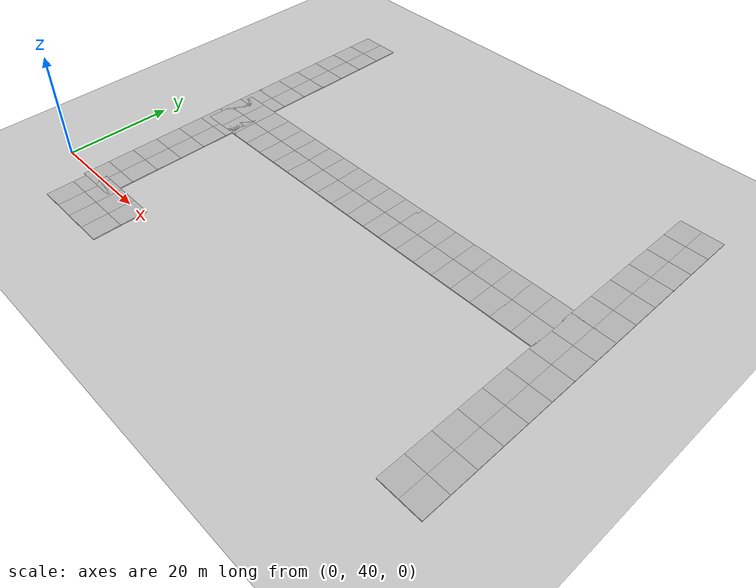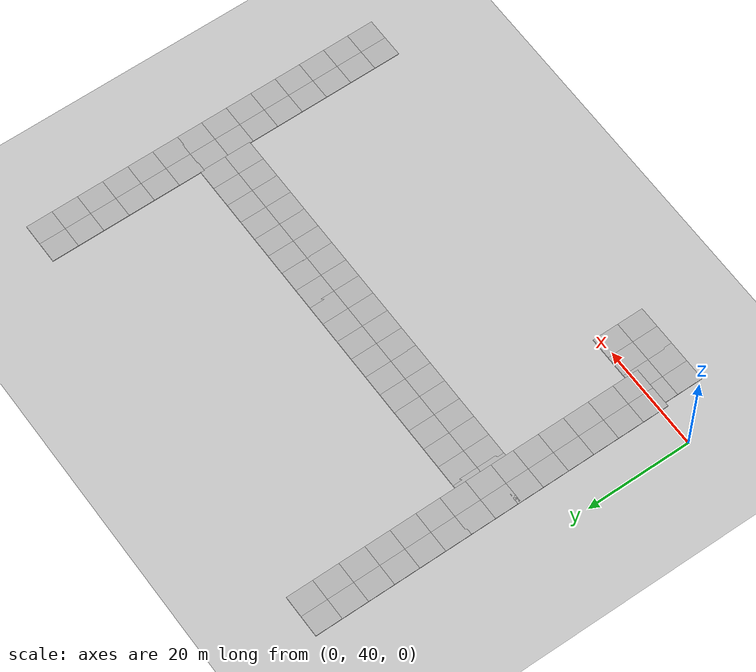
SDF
<sdf version="1.7">
 <world name="default">
  <model name="ground_plane">
   <static>1</static>
   <link name="link">
    <collision name="collision">
     <geometry><plane><normal>0 0 1</normal><size>100 100</size></plane></geometry>
     <surface>
      <contact><collide_bitmask>65535</collide_bitmask></contact>
      <friction><ode><mu>100</mu><mu2>50</mu2></ode></friction>
     </surface>
    </collision>
    <visual name="visual">
     <cast_shadows>0</cast_shadows>
     <geometry><plane><normal>0 0 1</normal><size>100 100</size></plane></geometry>
     <material>
      <script><uri>file://media/materials/scripts/gazebo.material</uri><name>Gazebo/Grey</name></script>
     </material>
    </visual>
   </link>
  </model>
  <model name="mud_box_15">
   <static>1</static>
   <link name="link">
    <collision name="collision"><geometry><box><size>8 10 0.2</size></box></geometry></collision>
    <visual name="visual_1">
     <pose>-2 2.5 0 0 -0 0</pose>
     <cast_shadows>0</cast_shadows>
     <geometry><box><size>4 5 0.2</size></box></geometry>
     <material>
      <script>
       <uri>model://mud_box/materials/scripts</uri>
       <uri>model://mud_box/materials/textures</uri>
       <name>vrc/mud</name>
      </script>
     </material>
    </visual>
    <visual name="visual_2">
     <pose>2 2.5 0 0 -0 0</pose>
     <cast_shadows>0</cast_shadows>
     <geometry><box><size>4 5 0.2</size></box></geometry>
     <material>
      <script>
       <uri>model://mud_box/materials/scripts</uri>
       <uri>model://mud_box/materials/textures</uri>
       <name>vrc/mud</name>
      </script>
     </material>
    </visual>
    <visual name="visual_3">
     <pose>2 -2.5 0 0 -0 0</pose>
     <cast_shadows>0</cast_shadows>
     <geometry><box><size>4 5 0.2</size></box></geometry>
     <material>
      <script>
       <uri>model://mud_box/materials/scripts</uri>
       <uri>model://mud_box/materials/textures</uri>
       <name>vrc/mud</name>
      </script>
     </material>
    </visual>
    <visual name="visual_4">
     <pose>-2 -2.5 0 0 -0 0</pose>
     <cast_shadows>0</cast_shadows>
     <geometry><box><size>4 5 0.2</size></box></geometry>
     <material>
      <script>
       <uri>model://mud_box/materials/scripts</uri>
       <uri>model://mud_box/materials/textures</uri>
       <name>vrc/mud</name>
      </script>
     </material>
    </visual>
   </link>
   <pose>90.5332 39.4327 0 0 -0 0</pose>
  </model>
  <model name="mud_box_16">
   <static>1</static>
   <link name="link">
    <collision name="collision"><geometry><box><size>8 10 0.2</size></box></geometry></collision>
    <visual name="visual_1">
     <pose>-2 2.5 0 0 -0 0</pose>
     <cast_shadows>0</cast_shadows>
     <geometry><box><size>4 5 0.2</size></box></geometry>
     <material>
      <script>
       <uri>model://mud_box/materials/scripts</uri>
       <uri>model://mud_box/materials/textures</uri>
       <name>vrc/mud</name>
      </script>
     </material>
    </visual>
    <visual name="visual_2">
     <pose>2 2.5 0 0 -0 0</pose>
     <cast_shadows>0</cast_shadows>
     <geometry><box><size>4 5 0.2</size></box></geometry>
     <material>
      <script>
       <uri>model://mud_box/materials/scripts</uri>
       <uri>model://mud_box/materials/textures</uri>
       <name>vrc/mud</name>
      </script>
     </material>
    </visual>
    <visual name="visual_3">
     <pose>2 -2.5 0 0 -0 0</pose>
     <cast_shadows>0</cast_shadows>
     <geometry><box><size>4 5 0.2</size></box></geometry>
     <material>
      <script>
       <uri>model://mud_box/materials/scripts</uri>
       <uri>model://mud_box/materials/textures</uri>
       <name>vrc/mud</name>
      </script>
     </material>
    </visual>
    <visual name="visual_4">
     <pose>-2 -2.5 0 0 -0 0</pose>
     <cast_shadows>0</cast_shadows>
     <geometry><box><size>4 5 0.2</size></box></geometry>
     <material>
      <script>
       <uri>model://mud_box/materials/scripts</uri>
       <uri>model://mud_box/materials/textures</uri>
       <name>vrc/mud</name>
      </script>
     </material>
    </visual>
   </link>
   <pose>90.5332 49.4199 0 0 -0 0</pose>
  </model>
  <model name="mud_box_17">
   <static>1</static>
   <link name="link">
    <collision name="collision"><geometry><box><size>8 10 0.2</size></box></geometry></collision>
    <visual name="visual_1">
     <pose>-2 2.5 0 0 -0 0</pose>
     <cast_shadows>0</cast_shadows>
     <geometry><box><size>4 5 0.2</size></box></geometry>
     <material>
      <script>
       <uri>model://mud_box/materials/scripts</uri>
       <uri>model://mud_box/materials/textures</uri>
       <name>vrc/mud</name>
      </script>
     </material>
    </visual>
    <visual name="visual_2">
     <pose>2 2.5 0 0 -0 0</pose>
     <cast_shadows>0</cast_shadows>
     <geometry><box><size>4 5 0.2</size></box></geometry>
     <material>
      <script>
       <uri>model://mud_box/materials/scripts</uri>
       <uri>model://mud_box/materials/textures</uri>
       <name>vrc/mud</name>
      </script>
     </material>
    </visual>
    <visual name="visual_3">
     <pose>2 -2.5 0 0 -0 0</pose>
     <cast_shadows>0</cast_shadows>
     <geometry><box><size>4 5 0.2</size></box></geometry>
     <material>
      <script>
       <uri>model://mud_box/materials/scripts</uri>
       <uri>model://mud_box/materials/textures</uri>
       <name>vrc/mud</name>
      </script>
     </material>
    </visual>
    <visual name="visual_4">
     <pose>-2 -2.5 0 0 -0 0</pose>
     <cast_shadows>0</cast_shadows>
     <geometry><box><size>4 5 0.2</size></box></geometry>
     <material>
      <script>
       <uri>model://mud_box/materials/scripts</uri>
       <uri>model://mud_box/materials/textures</uri>
       <name>vrc/mud</name>
      </script>
     </material>
    </visual>
   </link>
   <pose>90.5332 59.407 0 0 -0 0</pose>
  </model>
  <model name="mud_box_18">
   <static>1</static>
   <link name="link">
    <collision name="collision"><geometry><box><size>8 10 0.2</size></box></geometry></collision>
    <visual name="visual_1">
     <pose>-2 2.5 0 0 -0 0</pose>
     <cast_shadows>0</cast_shadows>
     <geometry><box><size>4 5 0.2</size></box></geometry>
     <material>
      <script>
       <uri>model://mud_box/materials/scripts</uri>
       <uri>model://mud_box/materials/textures</uri>
       <name>vrc/mud</name>
      </script>
     </material>
    </visual>
    <visual name="visual_2">
     <pose>2 2.5 0 0 -0 0</pose>
     <cast_shadows>0</cast_shadows>
     <geometry><box><size>4 5 0.2</size></box></geometry>
     <material>
      <script>
       <uri>model://mud_box/materials/scripts</uri>
       <uri>model://mud_box/materials/textures</uri>
       <name>vrc/mud</name>
      </script>
     </material>
    </visual>
    <visual name="visual_3">
     <pose>2 -2.5 0 0 -0 0</pose>
     <cast_shadows>0</cast_shadows>
     <geometry><box><size>4 5 0.2</size></box></geometry>
     <material>
      <script>
       <uri>model://mud_box/materials/scripts</uri>
       <uri>model://mud_box/materials/textures</uri>
       <name>vrc/mud</name>
      </script>
     </material>
    </visual>
    <visual name="visual_4">
     <pose>-2 -2.5 0 0 -0 0</pose>
     <cast_shadows>0</cast_shadows>
     <geometry><box><size>4 5 0.2</size></box></geometry>
     <material>
      <script>
       <uri>model://mud_box/materials/scripts</uri>
       <uri>model://mud_box/materials/textures</uri>
       <name>vrc/mud</name>
      </script>
     </material>
    </visual>
   </link>
   <pose>90.5332 69.3941 0 0 -0 0</pose>
  </model>
  <model name="mud_box_19">
   <static>1</static>
   <link name="link">
    <collision name="collision"><geometry><box><size>8 10 0.2</size></box></geometry></collision>
    <visual name="visual_1">
     <pose>-2 2.5 0 0 -0 0</pose>
     <cast_shadows>0</cast_shadows>
     <geometry><box><size>4 5 0.2</size></box></geometry>
     <material>
      <script>
       <uri>model://mud_box/materials/scripts</uri>
       <uri>model://mud_box/materials/textures</uri>
       <name>vrc/mud</name>
      </script>
     </material>
    </visual>
    <visual name="visual_2">
     <pose>2 2.5 0 0 -0 0</pose>
     <cast_shadows>0</cast_shadows>
     <geometry><box><size>4 5 0.2</size></box></geometry>
     <material>
      <script>
       <uri>model://mud_box/materials/scripts</uri>
       <uri>model://mud_box/materials/textures</uri>
       <name>vrc/mud</name>
      </script>
     </material>
    </visual>
    <visual name="visual_3">
     <pose>2 -2.5 0 0 -0 0</pose>
     <cast_shadows>0</cast_shadows>
     <geometry><box><size>4 5 0.2</size></box></geometry>
     <material>
      <script>
       <uri>model://mud_box/materials/scripts</uri>
       <uri>model://mud_box/materials/textures</uri>
       <name>vrc/mud</name>
      </script>
     </material>
    </visual>
    <visual name="visual_4">
     <pose>-2 -2.5 0 0 -0 0</pose>
     <cast_shadows>0</cast_shadows>
     <geometry><box><size>4 5 0.2</size></box></geometry>
     <material>
      <script>
       <uri>model://mud_box/materials/scripts</uri>
       <uri>model://mud_box/materials/textures</uri>
       <name>vrc/mud</name>
      </script>
     </material>
    </visual>
   </link>
   <pose>90.5332 79.2386 0 0 -0 0</pose>
  </model>
  <model name="mud_box_20">
   <static>1</static>
   <link name="link">
    <collision name="collision"><geometry><box><size>8 10 0.2</size></box></geometry></collision>
    <visual name="visual_1">
     <pose>-2 2.5 0 0 -0 0</pose>
     <cast_shadows>0</cast_shadows>
     <geometry><box><size>4 5 0.2</size></box></geometry>
     <material>
      <script>
       <uri>model://mud_box/materials/scripts</uri>
       <uri>model://mud_box/materials/textures</uri>
       <name>vrc/mud</name>
      </script>
     </material>
    </visual>
    <visual name="visual_2">
     <pose>2 2.5 0 0 -0 0</pose>
     <cast_shadows>0</cast_shadows>
     <geometry><box><size>4 5 0.2</size></box></geometry>
     <material>
      <script>
       <uri>model://mud_box/materials/scripts</uri>
       <uri>model://mud_box/materials/textures</uri>
       <name>vrc/mud</name>
      </script>
     </material>
    </visual>
    <visual name="visual_3">
     <pose>2 -2.5 0 0 -0 0</pose>
     <cast_shadows>0</cast_shadows>
     <geometry><box><size>4 5 0.2</size></box></geometry>
     <material>
      <script>
       <uri>model://mud_box/materials/scripts</uri>
       <uri>model://mud_box/materials/textures</uri>
       <name>vrc/mud</name>
      </script>
     </material>
    </visual>
    <visual name="visual_4">
     <pose>-2 -2.5 0 0 -0 0</pose>
     <cast_shadows>0</cast_shadows>
     <geometry><box><size>4 5 0.2</size></box></geometry>
     <material>
      <script>
       <uri>model://mud_box/materials/scripts</uri>
       <uri>model://mud_box/materials/textures</uri>
       <name>vrc/mud</name>
      </script>
     </material>
    </visual>
   </link>
   <pose>90.5332 89.2257 0 0 -0 0</pose>
  </model>
  <model name="mud_box_21">
   <static>1</static>
   <link name="link">
    <collision name="collision"><geometry><box><size>8 10 0.2</size></box></geometry></collision>
    <visual name="visual_1">
     <pose>-2 2.5 0 0 -0 0</pose>
     <cast_shadows>0</cast_shadows>
     <geometry><box><size>4 5 0.2</size></box></geometry>
     <material>
      <script>
       <uri>model://mud_box/materials/scripts</uri>
       <uri>model://mud_box/materials/textures</uri>
       <name>vrc/mud</name>
      </script>
     </material>
    </visual>
    <visual name="visual_2">
     <pose>2 2.5 0 0 -0 0</pose>
     <cast_shadows>0</cast_shadows>
     <geometry><box><size>4 5 0.2</size></box></geometry>
     <material>
      <script>
       <uri>model://mud_box/materials/scripts</uri>
       <uri>model://mud_box/materials/textures</uri>
       <name>vrc/mud</name>
      </script>
     </material>
    </visual>
    <visual name="visual_3">
     <pose>2 -2.5 0 0 -0 0</pose>
     <cast_shadows>0</cast_shadows>
     <geometry><box><size>4 5 0.2</size></box></geometry>
     <material>
      <script>
       <uri>model://mud_box/materials/scripts</uri>
       <uri>model://mud_box/materials/textures</uri>
       <name>vrc/mud</name>
      </script>
     </material>
    </visual>
    <visual name="visual_4">
     <pose>-2 -2.5 0 0 -0 0</pose>
     <cast_shadows>0</cast_shadows>
     <geometry><box><size>4 5 0.2</size></box></geometry>
     <material>
      <script>
       <uri>model://mud_box/materials/scripts</uri>
       <uri>model://mud_box/materials/textures</uri>
       <name>vrc/mud</name>
      </script>
     </material>
    </visual>
   </link>
   <pose>90.5332 99.2128 0 0 -0 0</pose>
  </model>
  <model name="mud_box_49">
   <static>1</static>
   <link name="link">
    <collision name="collision"><geometry><box><size>8 10 0.2</size></box></geometry></collision>
    <visual name="visual_1">
     <pose>-2 2.5 0 0 -0 0</pose>
     <cast_shadows>0</cast_shadows>
     <geometry><box><size>4 5 0.2</size></box></geometry>
     <material>
      <script>
       <uri>model://mud_box/materials/scripts</uri>
       <uri>model://mud_box/materials/textures</uri>
       <name>vrc/mud</name>
      </script>
     </material>
    </visual>
    <visual name="visual_2">
     <pose>2 2.5 0 0 -0 0</pose>
     <cast_shadows>0</cast_shadows>
     <geometry><box><size>4 5 0.2</size></box></geometry>
     <material>
      <script>
       <uri>model://mud_box/materials/scripts</uri>
       <uri>model://mud_box/materials/textures</uri>
       <name>vrc/mud</name>
      </script>
     </material>
    </visual>
    <visual name="visual_3">
     <pose>2 -2.5 0 0 -0 0</pose>
     <cast_shadows>0</cast_shadows>
     <geometry><box><size>4 5 0.2</size></box></geometry>
     <material>
      <script>
       <uri>model://mud_box/materials/scripts</uri>
       <uri>model://mud_box/materials/textures</uri>
       <name>vrc/mud</name>
      </script>
     </material>
    </visual>
    <visual name="visual_4">
     <pose>-2 -2.5 0 0 -0 0</pose>
     <cast_shadows>0</cast_shadows>
     <geometry><box><size>4 5 0.2</size></box></geometry>
     <material>
      <script>
       <uri>model://mud_box/materials/scripts</uri>
       <uri>model://mud_box/materials/textures</uri>
       <name>vrc/mud</name>
      </script>
     </material>
    </visual>
   </link>
   <pose>11.0818 102.417 0 0 -0 0</pose>
  </model>
  <model name="mud_box_50">
   <static>1</static>
   <link name="link">
    <collision name="collision"><geometry><box><size>8 10 0.2</size></box></geometry></collision>
    <visual name="visual_1">
     <pose>-2 2.5 0 0 -0 0</pose>
     <cast_shadows>0</cast_shadows>
     <geometry><box><size>4 5 0.2</size></box></geometry>
     <material>
      <script>
       <uri>model://mud_box/materials/scripts</uri>
       <uri>model://mud_box/materials/textures</uri>
       <name>vrc/mud</name>
      </script>
     </material>
    </visual>
    <visual name="visual_2">
     <pose>2 2.5 0 0 -0 0</pose>
     <cast_shadows>0</cast_shadows>
     <geometry><box><size>4 5 0.2</size></box></geometry>
     <material>
      <script>
       <uri>model://mud_box/materials/scripts</uri>
       <uri>model://mud_box/materials/textures</uri>
       <name>vrc/mud</name>
      </script>
     </material>
    </visual>
    <visual name="visual_3">
     <pose>2 -2.5 0 0 -0 0</pose>
     <cast_shadows>0</cast_shadows>
     <geometry><box><size>4 5 0.2</size></box></geometry>
     <material>
      <script>
       <uri>model://mud_box/materials/scripts</uri>
       <uri>model://mud_box/materials/textures</uri>
       <name>vrc/mud</name>
      </script>
     </material>
    </visual>
    <visual name="visual_4">
     <pose>-2 -2.5 0 0 -0 0</pose>
     <cast_shadows>0</cast_shadows>
     <geometry><box><size>4 5 0.2</size></box></geometry>
     <material>
      <script>
       <uri>model://mud_box/materials/scripts</uri>
       <uri>model://mud_box/materials/textures</uri>
       <name>vrc/mud</name>
      </script>
     </material>
    </visual>
   </link>
   <pose>11.0818 92.4356 0 0 -0 0</pose>
  </model>
  <model name="mud_box_51">
   <static>1</static>
   <link name="link">
    <collision name="collision"><geometry><box><size>8 10 0.2</size></box></geometry></collision>
    <visual name="visual_1">
     <pose>-2 2.5 0 0 -0 0</pose>
     <cast_shadows>0</cast_shadows>
     <geometry><box><size>4 5 0.2</size></box></geometry>
     <material>
      <script>
       <uri>model://mud_box/materials/scripts</uri>
       <uri>model://mud_box/materials/textures</uri>
       <name>vrc/mud</name>
      </script>
     </material>
    </visual>
    <visual name="visual_2">
     <pose>2 2.5 0 0 -0 0</pose>
     <cast_shadows>0</cast_shadows>
     <geometry><box><size>4 5 0.2</size></box></geometry>
     <material>
      <script>
       <uri>model://mud_box/materials/scripts</uri>
       <uri>model://mud_box/materials/textures</uri>
       <name>vrc/mud</name>
      </script>
     </material>
    </visual>
    <visual name="visual_3">
     <pose>2 -2.5 0 0 -0 0</pose>
     <cast_shadows>0</cast_shadows>
     <geometry><box><size>4 5 0.2</size></box></geometry>
     <material>
      <script>
       <uri>model://mud_box/materials/scripts</uri>
       <uri>model://mud_box/materials/textures</uri>
       <name>vrc/mud</name>
      </script>
     </material>
    </visual>
    <visual name="visual_4">
     <pose>-2 -2.5 0 0 -0 0</pose>
     <cast_shadows>0</cast_shadows>
     <geometry><box><size>4 5 0.2</size></box></geometry>
     <material>
      <script>
       <uri>model://mud_box/materials/scripts</uri>
       <uri>model://mud_box/materials/textures</uri>
       <name>vrc/mud</name>
      </script>
     </material>
    </visual>
   </link>
   <pose>11.0818 82.6005 0 0 -0 0</pose>
  </model>
  <model name="mud_box_52">
   <static>1</static>
   <link name="link">
    <collision name="collision"><geometry><box><size>8 10 0.2</size></box></geometry></collision>
    <visual name="visual_1">
     <pose>-2 2.5 0 0 -0 0</pose>
     <cast_shadows>0</cast_shadows>
     <geometry><box><size>4 5 0.2</size></box></geometry>
     <material>
      <script>
       <uri>model://mud_box/materials/scripts</uri>
       <uri>model://mud_box/materials/textures</uri>
       <name>vrc/mud</name>
      </script>
     </material>
    </visual>
    <visual name="visual_2">
     <pose>2 2.5 0 0 -0 0</pose>
     <cast_shadows>0</cast_shadows>
     <geometry><box><size>4 5 0.2</size></box></geometry>
     <material>
      <script>
       <uri>model://mud_box/materials/scripts</uri>
       <uri>model://mud_box/materials/textures</uri>
       <name>vrc/mud</name>
      </script>
     </material>
    </visual>
    <visual name="visual_3">
     <pose>2 -2.5 0 0 -0 0</pose>
     <cast_shadows>0</cast_shadows>
     <geometry><box><size>4 5 0.2</size></box></geometry>
     <material>
      <script>
       <uri>model://mud_box/materials/scripts</uri>
       <uri>model://mud_box/materials/textures</uri>
       <name>vrc/mud</name>
      </script>
     </material>
    </visual>
    <visual name="visual_4">
     <pose>-2 -2.5 0 0 -0 0</pose>
     <cast_shadows>0</cast_shadows>
     <geometry><box><size>4 5 0.2</size></box></geometry>
     <material>
      <script>
       <uri>model://mud_box/materials/scripts</uri>
       <uri>model://mud_box/materials/textures</uri>
       <name>vrc/mud</name>
      </script>
     </material>
    </visual>
   </link>
   <pose>11.0818 72.9122 0 0 -0 0</pose>
  </model>
  <model name="mud_box_53">
   <static>1</static>
   <link name="link">
    <collision name="collision"><geometry><box><size>8 10 0.2</size></box></geometry></collision>
    <visual name="visual_1">
     <pose>-2 2.5 0 0 -0 0</pose>
     <cast_shadows>0</cast_shadows>
     <geometry><box><size>4 5 0.2</size></box></geometry>
     <material>
      <script>
       <uri>model://mud_box/materials/scripts</uri>
       <uri>model://mud_box/materials/textures</uri>
       <name>vrc/mud</name>
      </script>
     </material>
    </visual>
    <visual name="visual_2">
     <pose>2 2.5 0 0 -0 0</pose>
     <cast_shadows>0</cast_shadows>
     <geometry><box><size>4 5 0.2</size></box></geometry>
     <material>
      <script>
       <uri>model://mud_box/materials/scripts</uri>
       <uri>model://mud_box/materials/textures</uri>
       <name>vrc/mud</name>
      </script>
     </material>
    </visual>
    <visual name="visual_3">
     <pose>2 -2.5 0 0 -0 0</pose>
     <cast_shadows>0</cast_shadows>
     <geometry><box><size>4 5 0.2</size></box></geometry>
     <material>
      <script>
       <uri>model://mud_box/materials/scripts</uri>
       <uri>model://mud_box/materials/textures</uri>
       <name>vrc/mud</name>
      </script>
     </material>
    </visual>
    <visual name="visual_4">
     <pose>-2 -2.5 0 0 -0 0</pose>
     <cast_shadows>0</cast_shadows>
     <geometry><box><size>4 5 0.2</size></box></geometry>
     <material>
      <script>
       <uri>model://mud_box/materials/scripts</uri>
       <uri>model://mud_box/materials/textures</uri>
       <name>vrc/mud</name>
      </script>
     </material>
    </visual>
   </link>
   <pose>82.7164 69.9763 0 0 -0 0</pose>
  </model>
  <model name="mud_box_54">
   <static>1</static>
   <link name="link">
    <collision name="collision"><geometry><box><size>8 10 0.2</size></box></geometry></collision>
    <visual name="visual_1">
     <pose>-2 2.5 0 0 -0 0</pose>
     <cast_shadows>0</cast_shadows>
     <geometry><box><size>4 5 0.2</size></box></geometry>
     <material>
      <script>
       <uri>model://mud_box/materials/scripts</uri>
       <uri>model://mud_box/materials/textures</uri>
       <name>vrc/mud</name>
      </script>
     </material>
    </visual>
    <visual name="visual_2">
     <pose>2 2.5 0 0 -0 0</pose>
     <cast_shadows>0</cast_shadows>
     <geometry><box><size>4 5 0.2</size></box></geometry>
     <material>
      <script>
       <uri>model://mud_box/materials/scripts</uri>
       <uri>model://mud_box/materials/textures</uri>
       <name>vrc/mud</name>
      </script>
     </material>
    </visual>
    <visual name="visual_3">
     <pose>2 -2.5 0 0 -0 0</pose>
     <cast_shadows>0</cast_shadows>
     <geometry><box><size>4 5 0.2</size></box></geometry>
     <material>
      <script>
       <uri>model://mud_box/materials/scripts</uri>
       <uri>model://mud_box/materials/textures</uri>
       <name>vrc/mud</name>
      </script>
     </material>
    </visual>
    <visual name="visual_4">
     <pose>-2 -2.5 0 0 -0 0</pose>
     <cast_shadows>0</cast_shadows>
     <geometry><box><size>4 5 0.2</size></box></geometry>
     <material>
      <script>
       <uri>model://mud_box/materials/scripts</uri>
       <uri>model://mud_box/materials/textures</uri>
       <name>vrc/mud</name>
      </script>
     </material>
    </visual>
   </link>
   <pose>74.7897 69.9763 0 0 -0 0</pose>
  </model>
  <model name="mud_box_55">
   <static>1</static>
   <link name="link">
    <collision name="collision"><geometry><box><size>8 10 0.2</size></box></geometry></collision>
    <visual name="visual_1">
     <pose>-2 2.5 0 0 -0 0</pose>
     <cast_shadows>0</cast_shadows>
     <geometry><box><size>4 5 0.2</size></box></geometry>
     <material>
      <script>
       <uri>model://mud_box/materials/scripts</uri>
       <uri>model://mud_box/materials/textures</uri>
       <name>vrc/mud</name>
      </script>
     </material>
    </visual>
    <visual name="visual_2">
     <pose>2 2.5 0 0 -0 0</pose>
     <cast_shadows>0</cast_shadows>
     <geometry><box><size>4 5 0.2</size></box></geometry>
     <material>
      <script>
       <uri>model://mud_box/materials/scripts</uri>
       <uri>model://mud_box/materials/textures</uri>
       <name>vrc/mud</name>
      </script>
     </material>
    </visual>
    <visual name="visual_3">
     <pose>2 -2.5 0 0 -0 0</pose>
     <cast_shadows>0</cast_shadows>
     <geometry><box><size>4 5 0.2</size></box></geometry>
     <material>
      <script>
       <uri>model://mud_box/materials/scripts</uri>
       <uri>model://mud_box/materials/textures</uri>
       <name>vrc/mud</name>
      </script>
     </material>
    </visual>
    <visual name="visual_4">
     <pose>-2 -2.5 0 0 -0 0</pose>
     <cast_shadows>0</cast_shadows>
     <geometry><box><size>4 5 0.2</size></box></geometry>
     <material>
      <script>
       <uri>model://mud_box/materials/scripts</uri>
       <uri>model://mud_box/materials/textures</uri>
       <name>vrc/mud</name>
      </script>
     </material>
    </visual>
   </link>
   <pose>66.8629 69.9763 0 0 -0 0</pose>
  </model>
  <model name="mud_box_56">
   <static>1</static>
   <link name="link">
    <collision name="collision"><geometry><box><size>8 10 0.2</size></box></geometry></collision>
    <visual name="visual_1">
     <pose>-2 2.5 0 0 -0 0</pose>
     <cast_shadows>0</cast_shadows>
     <geometry><box><size>4 5 0.2</size></box></geometry>
     <material>
      <script>
       <uri>model://mud_box/materials/scripts</uri>
       <uri>model://mud_box/materials/textures</uri>
       <name>vrc/mud</name>
      </script>
     </material>
    </visual>
    <visual name="visual_2">
     <pose>2 2.5 0 0 -0 0</pose>
     <cast_shadows>0</cast_shadows>
     <geometry><box><size>4 5 0.2</size></box></geometry>
     <material>
      <script>
       <uri>model://mud_box/materials/scripts</uri>
       <uri>model://mud_box/materials/textures</uri>
       <name>vrc/mud</name>
      </script>
     </material>
    </visual>
    <visual name="visual_3">
     <pose>2 -2.5 0 0 -0 0</pose>
     <cast_shadows>0</cast_shadows>
     <geometry><box><size>4 5 0.2</size></box></geometry>
     <material>
      <script>
       <uri>model://mud_box/materials/scripts</uri>
       <uri>model://mud_box/materials/textures</uri>
       <name>vrc/mud</name>
      </script>
     </material>
    </visual>
    <visual name="visual_4">
     <pose>-2 -2.5 0 0 -0 0</pose>
     <cast_shadows>0</cast_shadows>
     <geometry><box><size>4 5 0.2</size></box></geometry>
     <material>
      <script>
       <uri>model://mud_box/materials/scripts</uri>
       <uri>model://mud_box/materials/textures</uri>
       <name>vrc/mud</name>
      </script>
     </material>
    </visual>
   </link>
   <pose>58.9361 69.9763 0 0 -0 0</pose>
  </model>
  <model name="mud_box_57">
   <static>1</static>
   <link name="link">
    <collision name="collision"><geometry><box><size>8 10 0.2</size></box></geometry></collision>
    <visual name="visual_1">
     <pose>-2 2.5 0 0 -0 0</pose>
     <cast_shadows>0</cast_shadows>
     <geometry><box><size>4 5 0.2</size></box></geometry>
     <material>
      <script>
       <uri>model://mud_box/materials/scripts</uri>
       <uri>model://mud_box/materials/textures</uri>
       <name>vrc/mud</name>
      </script>
     </material>
    </visual>
    <visual name="visual_2">
     <pose>2 2.5 0 0 -0 0</pose>
     <cast_shadows>0</cast_shadows>
     <geometry><box><size>4 5 0.2</size></box></geometry>
     <material>
      <script>
       <uri>model://mud_box/materials/scripts</uri>
       <uri>model://mud_box/materials/textures</uri>
       <name>vrc/mud</name>
      </script>
     </material>
    </visual>
    <visual name="visual_3">
     <pose>2 -2.5 0 0 -0 0</pose>
     <cast_shadows>0</cast_shadows>
     <geometry><box><size>4 5 0.2</size></box></geometry>
     <material>
      <script>
       <uri>model://mud_box/materials/scripts</uri>
       <uri>model://mud_box/materials/textures</uri>
       <name>vrc/mud</name>
      </script>
     </material>
    </visual>
    <visual name="visual_4">
     <pose>-2 -2.5 0 0 -0 0</pose>
     <cast_shadows>0</cast_shadows>
     <geometry><box><size>4 5 0.2</size></box></geometry>
     <material>
      <script>
       <uri>model://mud_box/materials/scripts</uri>
       <uri>model://mud_box/materials/textures</uri>
       <name>vrc/mud</name>
      </script>
     </material>
    </visual>
   </link>
   <pose>51.3029 69.9763 0 0 -0 0</pose>
  </model>
  <model name="mud_box_58">
   <static>1</static>
   <link name="link">
    <collision name="collision"><geometry><box><size>8 10 0.2</size></box></geometry></collision>
    <visual name="visual_1">
     <pose>-2 2.5 0 0 -0 0</pose>
     <cast_shadows>0</cast_shadows>
     <geometry><box><size>4 5 0.2</size></box></geometry>
     <material>
      <script>
       <uri>model://mud_box/materials/scripts</uri>
       <uri>model://mud_box/materials/textures</uri>
       <name>vrc/mud</name>
      </script>
     </material>
    </visual>
    <visual name="visual_2">
     <pose>2 2.5 0 0 -0 0</pose>
     <cast_shadows>0</cast_shadows>
     <geometry><box><size>4 5 0.2</size></box></geometry>
     <material>
      <script>
       <uri>model://mud_box/materials/scripts</uri>
       <uri>model://mud_box/materials/textures</uri>
       <name>vrc/mud</name>
      </script>
     </material>
    </visual>
    <visual name="visual_3">
     <pose>2 -2.5 0 0 -0 0</pose>
     <cast_shadows>0</cast_shadows>
     <geometry><box><size>4 5 0.2</size></box></geometry>
     <material>
      <script>
       <uri>model://mud_box/materials/scripts</uri>
       <uri>model://mud_box/materials/textures</uri>
       <name>vrc/mud</name>
      </script>
     </material>
    </visual>
    <visual name="visual_4">
     <pose>-2 -2.5 0 0 -0 0</pose>
     <cast_shadows>0</cast_shadows>
     <geometry><box><size>4 5 0.2</size></box></geometry>
     <material>
      <script>
       <uri>model://mud_box/materials/scripts</uri>
       <uri>model://mud_box/materials/textures</uri>
       <name>vrc/mud</name>
      </script>
     </material>
    </visual>
   </link>
   <pose>43.3761 69.9763 0 0 -0 0</pose>
  </model>
  <model name="mud_box_59">
   <static>1</static>
   <link name="link">
    <collision name="collision"><geometry><box><size>8 10 0.2</size></box></geometry></collision>
    <visual name="visual_1">
     <pose>-2 2.5 0 0 -0 0</pose>
     <cast_shadows>0</cast_shadows>
     <geometry><box><size>4 5 0.2</size></box></geometry>
     <material>
      <script>
       <uri>model://mud_box/materials/scripts</uri>
       <uri>model://mud_box/materials/textures</uri>
       <name>vrc/mud</name>
      </script>
     </material>
    </visual>
    <visual name="visual_2">
     <pose>2 2.5 0 0 -0 0</pose>
     <cast_shadows>0</cast_shadows>
     <geometry><box><size>4 5 0.2</size></box></geometry>
     <material>
      <script>
       <uri>model://mud_box/materials/scripts</uri>
       <uri>model://mud_box/materials/textures</uri>
       <name>vrc/mud</name>
      </script>
     </material>
    </visual>
    <visual name="visual_3">
     <pose>2 -2.5 0 0 -0 0</pose>
     <cast_shadows>0</cast_shadows>
     <geometry><box><size>4 5 0.2</size></box></geometry>
     <material>
      <script>
       <uri>model://mud_box/materials/scripts</uri>
       <uri>model://mud_box/materials/textures</uri>
       <name>vrc/mud</name>
      </script>
     </material>
    </visual>
    <visual name="visual_4">
     <pose>-2 -2.5 0 0 -0 0</pose>
     <cast_shadows>0</cast_shadows>
     <geometry><box><size>4 5 0.2</size></box></geometry>
     <material>
      <script>
       <uri>model://mud_box/materials/scripts</uri>
       <uri>model://mud_box/materials/textures</uri>
       <name>vrc/mud</name>
      </script>
     </material>
    </visual>
   </link>
   <pose>35.4493 69.9763 0 0 -0 0</pose>
  </model>
  <model name="mud_box_60">
   <static>1</static>
   <link name="link">
    <collision name="collision"><geometry><box><size>8 10 0.2</size></box></geometry></collision>
    <visual name="visual_1">
     <pose>-2 2.5 0 0 -0 0</pose>
     <cast_shadows>0</cast_shadows>
     <geometry><box><size>4 5 0.2</size></box></geometry>
     <material>
      <script>
       <uri>model://mud_box/materials/scripts</uri>
       <uri>model://mud_box/materials/textures</uri>
       <name>vrc/mud</name>
      </script>
     </material>
    </visual>
    <visual name="visual_2">
     <pose>2 2.5 0 0 -0 0</pose>
     <cast_shadows>0</cast_shadows>
     <geometry><box><size>4 5 0.2</size></box></geometry>
     <material>
      <script>
       <uri>model://mud_box/materials/scripts</uri>
       <uri>model://mud_box/materials/textures</uri>
       <name>vrc/mud</name>
      </script>
     </material>
    </visual>
    <visual name="visual_3">
     <pose>2 -2.5 0 0 -0 0</pose>
     <cast_shadows>0</cast_shadows>
     <geometry><box><size>4 5 0.2</size></box></geometry>
     <material>
      <script>
       <uri>model://mud_box/materials/scripts</uri>
       <uri>model://mud_box/materials/textures</uri>
       <name>vrc/mud</name>
      </script>
     </material>
    </visual>
    <visual name="visual_4">
     <pose>-2 -2.5 0 0 -0 0</pose>
     <cast_shadows>0</cast_shadows>
     <geometry><box><size>4 5 0.2</size></box></geometry>
     <material>
      <script>
       <uri>model://mud_box/materials/scripts</uri>
       <uri>model://mud_box/materials/textures</uri>
       <name>vrc/mud</name>
      </script>
     </material>
    </visual>
   </link>
   <pose>27.5225 69.9763 0 0 -0 0</pose>
  </model>
  <model name="mud_box_61">
   <static>1</static>
   <link name="link">
    <collision name="collision"><geometry><box><size>8 10 0.2</size></box></geometry></collision>
    <visual name="visual_1">
     <pose>-2 2.5 0 0 -0 0</pose>
     <cast_shadows>0</cast_shadows>
     <geometry><box><size>4 5 0.2</size></box></geometry>
     <material>
      <script>
       <uri>model://mud_box/materials/scripts</uri>
       <uri>model://mud_box/materials/textures</uri>
       <name>vrc/mud</name>
      </script>
     </material>
    </visual>
    <visual name="visual_2">
     <pose>2 2.5 0 0 -0 0</pose>
     <cast_shadows>0</cast_shadows>
     <geometry><box><size>4 5 0.2</size></box></geometry>
     <material>
      <script>
       <uri>model://mud_box/materials/scripts</uri>
       <uri>model://mud_box/materials/textures</uri>
       <name>vrc/mud</name>
      </script>
     </material>
    </visual>
    <visual name="visual_3">
     <pose>2 -2.5 0 0 -0 0</pose>
     <cast_shadows>0</cast_shadows>
     <geometry><box><size>4 5 0.2</size></box></geometry>
     <material>
      <script>
       <uri>model://mud_box/materials/scripts</uri>
       <uri>model://mud_box/materials/textures</uri>
       <name>vrc/mud</name>
      </script>
     </material>
    </visual>
    <visual name="visual_4">
     <pose>-2 -2.5 0 0 -0 0</pose>
     <cast_shadows>0</cast_shadows>
     <geometry><box><size>4 5 0.2</size></box></geometry>
     <material>
      <script>
       <uri>model://mud_box/materials/scripts</uri>
       <uri>model://mud_box/materials/textures</uri>
       <name>vrc/mud</name>
      </script>
     </material>
    </visual>
   </link>
   <pose>19.5958 69.9764 0 0 -0 0</pose>
  </model>
  <model name="mud_box_62">
   <static>1</static>
   <link name="link">
    <collision name="collision"><geometry><box><size>8 10 0.2</size></box></geometry></collision>
    <visual name="visual_1">
     <pose>-2 2.5 0 0 -0 0</pose>
     <cast_shadows>0</cast_shadows>
     <geometry><box><size>4 5 0.2</size></box></geometry>
     <material>
      <script>
       <uri>model://mud_box/materials/scripts</uri>
       <uri>model://mud_box/materials/textures</uri>
       <name>vrc/mud</name>
      </script>
     </material>
    </visual>
    <visual name="visual_2">
     <pose>2 2.5 0 0 -0 0</pose>
     <cast_shadows>0</cast_shadows>
     <geometry><box><size>4 5 0.2</size></box></geometry>
     <material>
      <script>
       <uri>model://mud_box/materials/scripts</uri>
       <uri>model://mud_box/materials/textures</uri>
       <name>vrc/mud</name>
      </script>
     </material>
    </visual>
    <visual name="visual_3">
     <pose>2 -2.5 0 0 -0 0</pose>
     <cast_shadows>0</cast_shadows>
     <geometry><box><size>4 5 0.2</size></box></geometry>
     <material>
      <script>
       <uri>model://mud_box/materials/scripts</uri>
       <uri>model://mud_box/materials/textures</uri>
       <name>vrc/mud</name>
      </script>
     </material>
    </visual>
    <visual name="visual_4">
     <pose>-2 -2.5 0 0 -0 0</pose>
     <cast_shadows>0</cast_shadows>
     <geometry><box><size>4 5 0.2</size></box></geometry>
     <material>
      <script>
       <uri>model://mud_box/materials/scripts</uri>
       <uri>model://mud_box/materials/textures</uri>
       <name>vrc/mud</name>
      </script>
     </material>
    </visual>
   </link>
   <pose>11.9626 69.9764 0 0 -0 0</pose>
  </model>
  <model name="mud_box_63">
   <static>1</static>
   <link name="link">
    <collision name="collision"><geometry><box><size>8 10 0.2</size></box></geometry></collision>
    <visual name="visual_1">
     <pose>-2 2.5 0 0 -0 0</pose>
     <cast_shadows>0</cast_shadows>
     <geometry><box><size>4 5 0.2</size></box></geometry>
     <material>
      <script>
       <uri>model://mud_box/materials/scripts</uri>
       <uri>model://mud_box/materials/textures</uri>
       <name>vrc/mud</name>
      </script>
     </material>
    </visual>
    <visual name="visual_2">
     <pose>2 2.5 0 0 -0 0</pose>
     <cast_shadows>0</cast_shadows>
     <geometry><box><size>4 5 0.2</size></box></geometry>
     <material>
      <script>
       <uri>model://mud_box/materials/scripts</uri>
       <uri>model://mud_box/materials/textures</uri>
       <name>vrc/mud</name>
      </script>
     </material>
    </visual>
    <visual name="visual_3">
     <pose>2 -2.5 0 0 -0 0</pose>
     <cast_shadows>0</cast_shadows>
     <geometry><box><size>4 5 0.2</size></box></geometry>
     <material>
      <script>
       <uri>model://mud_box/materials/scripts</uri>
       <uri>model://mud_box/materials/textures</uri>
       <name>vrc/mud</name>
      </script>
     </material>
    </visual>
    <visual name="visual_4">
     <pose>-2 -2.5 0 0 -0 0</pose>
     <cast_shadows>0</cast_shadows>
     <geometry><box><size>4 5 0.2</size></box></geometry>
     <material>
      <script>
       <uri>model://mud_box/materials/scripts</uri>
       <uri>model://mud_box/materials/textures</uri>
       <name>vrc/mud</name>
      </script>
     </material>
    </visual>
   </link>
   <pose>11.0818 63.5175 0 0 -0 0</pose>
  </model>
  <model name="mud_box_64">
   <static>1</static>
   <link name="link">
    <collision name="collision"><geometry><box><size>8 10 0.2</size></box></geometry></collision>
    <visual name="visual_1">
     <pose>-2 2.5 0 0 -0 0</pose>
     <cast_shadows>0</cast_shadows>
     <geometry><box><size>4 5 0.2</size></box></geometry>
     <material>
      <script>
       <uri>model://mud_box/materials/scripts</uri>
       <uri>model://mud_box/materials/textures</uri>
       <name>vrc/mud</name>
      </script>
     </material>
    </visual>
    <visual name="visual_2">
     <pose>2 2.5 0 0 -0 0</pose>
     <cast_shadows>0</cast_shadows>
     <geometry><box><size>4 5 0.2</size></box></geometry>
     <material>
      <script>
       <uri>model://mud_box/materials/scripts</uri>
       <uri>model://mud_box/materials/textures</uri>
       <name>vrc/mud</name>
      </script>
     </material>
    </visual>
    <visual name="visual_3">
     <pose>2 -2.5 0 0 -0 0</pose>
     <cast_shadows>0</cast_shadows>
     <geometry><box><size>4 5 0.2</size></box></geometry>
     <material>
      <script>
       <uri>model://mud_box/materials/scripts</uri>
       <uri>model://mud_box/materials/textures</uri>
       <name>vrc/mud</name>
      </script>
     </material>
    </visual>
    <visual name="visual_4">
     <pose>-2 -2.5 0 0 -0 0</pose>
     <cast_shadows>0</cast_shadows>
     <geometry><box><size>4 5 0.2</size></box></geometry>
     <material>
      <script>
       <uri>model://mud_box/materials/scripts</uri>
       <uri>model://mud_box/materials/textures</uri>
       <name>vrc/mud</name>
      </script>
     </material>
    </visual>
   </link>
   <pose>11.0818 53.5356 0 0 -0 0</pose>
  </model>
  <model name="mud_box_65">
   <static>1</static>
   <link name="link">
    <collision name="collision"><geometry><box><size>8 10 0.2</size></box></geometry></collision>
    <visual name="visual_1">
     <pose>-2 2.5 0 0 -0 0</pose>
     <cast_shadows>0</cast_shadows>
     <geometry><box><size>4 5 0.2</size></box></geometry>
     <material>
      <script>
       <uri>model://mud_box/materials/scripts</uri>
       <uri>model://mud_box/materials/textures</uri>
       <name>vrc/mud</name>
      </script>
     </material>
    </visual>
    <visual name="visual_2">
     <pose>2 2.5 0 0 -0 0</pose>
     <cast_shadows>0</cast_shadows>
     <geometry><box><size>4 5 0.2</size></box></geometry>
     <material>
      <script>
       <uri>model://mud_box/materials/scripts</uri>
       <uri>model://mud_box/materials/textures</uri>
       <name>vrc/mud</name>
      </script>
     </material>
    </visual>
    <visual name="visual_3">
     <pose>2 -2.5 0 0 -0 0</pose>
     <cast_shadows>0</cast_shadows>
     <geometry><box><size>4 5 0.2</size></box></geometry>
     <material>
      <script>
       <uri>model://mud_box/materials/scripts</uri>
       <uri>model://mud_box/materials/textures</uri>
       <name>vrc/mud</name>
      </script>
     </material>
    </visual>
    <visual name="visual_4">
     <pose>-2 -2.5 0 0 -0 0</pose>
     <cast_shadows>0</cast_shadows>
     <geometry><box><size>4 5 0.2</size></box></geometry>
     <material>
      <script>
       <uri>model://mud_box/materials/scripts</uri>
       <uri>model://mud_box/materials/textures</uri>
       <name>vrc/mud</name>
      </script>
     </material>
    </visual>
   </link>
   <pose>11.0818 43.5537 0 0 -0 0</pose>
  </model>
  <model name="mud_box_74">
   <static>1</static>
   <link name="link">
    <collision name="collision"><geometry><box><size>8 10 0.2</size></box></geometry></collision>
    <visual name="visual_1">
     <pose>-2 2.5 0 0 -0 0</pose>
     <cast_shadows>0</cast_shadows>
     <geometry><box><size>4 5 0.2</size></box></geometry>
     <material>
      <script>
       <uri>model://mud_box/materials/scripts</uri>
       <uri>model://mud_box/materials/textures</uri>
       <name>vrc/mud</name>
      </script>
     </material>
    </visual>
    <visual name="visual_2">
     <pose>2 2.5 0 0 -0 0</pose>
     <cast_shadows>0</cast_shadows>
     <geometry><box><size>4 5 0.2</size></box></geometry>
     <material>
      <script>
       <uri>model://mud_box/materials/scripts</uri>
       <uri>model://mud_box/materials/textures</uri>
       <name>vrc/mud</name>
      </script>
     </material>
    </visual>
    <visual name="visual_3">
     <pose>2 -2.5 0 0 -0 0</pose>
     <cast_shadows>0</cast_shadows>
     <geometry><box><size>4 5 0.2</size></box></geometry>
     <material>
      <script>
       <uri>model://mud_box/materials/scripts</uri>
       <uri>model://mud_box/materials/textures</uri>
       <name>vrc/mud</name>
      </script>
     </material>
    </visual>
    <visual name="visual_4">
     <pose>-2 -2.5 0 0 -0 0</pose>
     <cast_shadows>0</cast_shadows>
     <geometry><box><size>4 5 0.2</size></box></geometry>
     <material>
      <script>
       <uri>model://mud_box/materials/scripts</uri>
       <uri>model://mud_box/materials/textures</uri>
       <name>vrc/mud</name>
      </script>
     </material>
    </visual>
   </link>
   <pose>19.5958 36.0673 0 0 -0 0</pose>
  </model>
  <model name="mud_box_75">
   <static>1</static>
   <link name="link">
    <collision name="collision"><geometry><box><size>8 10 0.2</size></box></geometry></collision>
    <visual name="visual_1">
     <pose>-2 2.5 0 0 -0 0</pose>
     <cast_shadows>0</cast_shadows>
     <geometry><box><size>4 5 0.2</size></box></geometry>
     <material>
      <script>
       <uri>model://mud_box/materials/scripts</uri>
       <uri>model://mud_box/materials/textures</uri>
       <name>vrc/mud</name>
      </script>
     </material>
    </visual>
    <visual name="visual_2">
     <pose>2 2.5 0 0 -0 0</pose>
     <cast_shadows>0</cast_shadows>
     <geometry><box><size>4 5 0.2</size></box></geometry>
     <material>
      <script>
       <uri>model://mud_box/materials/scripts</uri>
       <uri>model://mud_box/materials/textures</uri>
       <name>vrc/mud</name>
      </script>
     </material>
    </visual>
    <visual name="visual_3">
     <pose>2 -2.5 0 0 -0 0</pose>
     <cast_shadows>0</cast_shadows>
     <geometry><box><size>4 5 0.2</size></box></geometry>
     <material>
      <script>
       <uri>model://mud_box/materials/scripts</uri>
       <uri>model://mud_box/materials/textures</uri>
       <name>vrc/mud</name>
      </script>
     </material>
    </visual>
    <visual name="visual_4">
     <pose>-2 -2.5 0 0 -0 0</pose>
     <cast_shadows>0</cast_shadows>
     <geometry><box><size>4 5 0.2</size></box></geometry>
     <material>
      <script>
       <uri>model://mud_box/materials/scripts</uri>
       <uri>model://mud_box/materials/textures</uri>
       <name>vrc/mud</name>
      </script>
     </material>
    </visual>
   </link>
   <pose>11.8158 36.0673 0 0 -0 0</pose>
  </model>
 </world>
</sdf>
